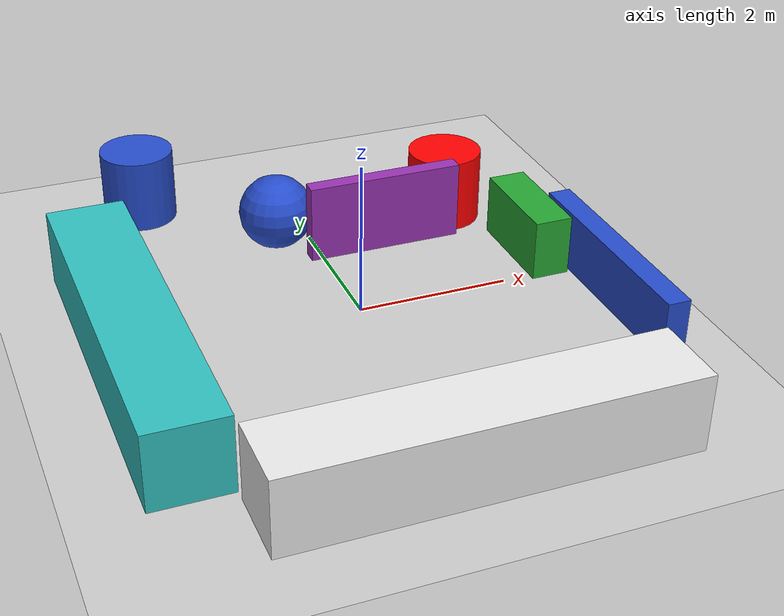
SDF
<sdf version="1.4">
 <world name="default">
  <light name="sun" type="directional">
   <pose>0 0 10 0 -0 0</pose>
   <diffuse>0.8 0.8 0.8 1</diffuse>
   <specular>0.2 0.2 0.2 1</specular>
   <attenuation>
    <range>1000</range>
    <constant>0.9</constant>
    <linear>0.01</linear>
    <quadratic>0.001</quadratic>
   </attenuation>
   <direction>-0.5 0.1 -0.9</direction>
  </light>
  <model name="ground_plane">
   <static>1</static>
   <link name="link">
    <collision name="collision">
     <geometry><plane><normal>0 0 1</normal><size>100 100</size></plane></geometry>
     <surface><friction><ode><mu>100</mu><mu2>50</mu2></ode></friction></surface>
    </collision>
    <visual name="visual">
     <cast_shadows>0</cast_shadows>
     <geometry><plane><normal>0 0 1</normal><size>100 100</size></plane></geometry>
     <material>
      <script><uri>file://media/materials/scripts/gazebo.material</uri><name>Gazebo/Grey</name></script>
     </material>
    </visual>
    <velocity_decay><linear>0</linear><angular>0</angular></velocity_decay>
   </link>
  </model>
  <physics type="ode">
   <max_step_size>0.001</max_step_size>
   <real_time_factor>1</real_time_factor>
   <real_time_update_rate>1000</real_time_update_rate>
   <gravity>0 0 -9.8</gravity>
  </physics>
  <scene><ambient>0.4 0.4 0.4 1</ambient><background>0.7 0.7 0.7 1</background><shadows>1</shadows></scene>
  <spherical_coordinates>
   <surface_model>EARTH_WGS84</surface_model>
   <latitude_deg>0</latitude_deg>
   <longitude_deg>0</longitude_deg>
   <elevation>0</elevation>
   <heading_deg>0</heading_deg>
  </spherical_coordinates>
  <model name="blue_box">
   <pose>3 -1 0.5 0 -0 0</pose>
   <link name="link">
    <inertial>
     <mass>1</mass>
     <inertia><ixx>1</ixx><ixy>0</ixy><ixz>0</ixz><iyy>1</iyy><iyz>0</iyz><izz>1</izz></inertia>
    </inertial>
    <collision name="collision"><geometry><box><size>0.3 3 0.8</size></box></geometry></collision>
    <visual name="visual">
     <geometry><box><size>0.3 3 0.8</size></box></geometry>
     <material>
      <script><uri>file://media/materials/scripts/gazebo.material</uri><name>Gazebo/Blue</name></script>
     </material>
    </visual>
    <velocity_decay><linear>0</linear><angular>0</angular></velocity_decay>
   </link>
   <static>1</static>
  </model>
  <model name="white_sphere">
   <pose>-0.462186 2 0.5 0 -0 0</pose>
   <link name="link">
    <inertial>
     <mass>1</mass>
     <inertia><ixx>1</ixx><ixy>0</ixy><ixz>0</ixz><iyy>1</iyy><iyz>0</iyz><izz>1</izz></inertia>
    </inertial>
    <collision name="collision"><geometry><sphere><radius>0.5</radius></sphere></geometry></collision>
    <visual name="visual">
     <geometry><sphere><radius>0.5</radius></sphere></geometry>
     <material>
      <script><uri>file://media/materials/scripts/gazebo.material</uri><name>Gazebo/blue</name></script>
     </material>
    </visual>
    <velocity_decay><linear>0</linear><angular>0</angular></velocity_decay>
   </link>
   <static>1</static>
  </model>
  <model name="red_cylinder">
   <pose>2 2 0.499998 0 -0 0</pose>
   <link name="link">
    <inertial>
     <mass>1</mass>
     <inertia><ixx>1</ixx><ixy>0</ixy><ixz>0</ixz><iyy>1</iyy><iyz>0</iyz><izz>1</izz></inertia>
    </inertial>
    <collision name="collision">
     <geometry><cylinder><radius>0.5</radius><length>1</length></cylinder></geometry>
    </collision>
    <visual name="visual">
     <geometry><cylinder><radius>0.5</radius><length>1</length></cylinder></geometry>
     <material>
      <script><uri>file://media/materials/scripts/gazebo.material</uri><name>Gazebo/Grey</name></script>
      <ambient>1 0 0 1</ambient>
      <diffuse>1 0 0 1</diffuse>
      <specular>0.1 0.1 0.1 1</specular>
      <emissive>0 0 0 0</emissive>
     </material>
    </visual>
    <velocity_decay><linear>0</linear><angular>0</angular></velocity_decay>
   </link>
   <static>1</static>
  </model>
  <model name="green_box">
   <pose>2.552 0.471529 0.5 0 -0 0</pose>
   <link name="link">
    <inertial>
     <mass>1</mass>
     <inertia><ixx>1</ixx><ixy>0</ixy><ixz>0</ixz><iyy>1</iyy><iyz>0</iyz><izz>1</izz></inertia>
    </inertial>
    <collision name="collision"><geometry><box><size>0.5 1.4 0.8</size></box></geometry></collision>
    <visual name="visual">
     <geometry><box><size>0.5 1.4 0.8</size></box></geometry>
     <material>
      <script><uri>file://media/materials/scripts/gazebo.material</uri><name>Gazebo/Green</name></script>
     </material>
    </visual>
    <velocity_decay><linear>0</linear><angular>0</angular></velocity_decay>
   </link>
   <static>1</static>
  </model>
  <model name="purple_box">
   <pose>0.554985 0.67 1 0 -0 0</pose>
   <link name="link">
    <inertial>
     <mass>1</mass>
     <inertia><ixx>1</ixx><ixy>0</ixy><ixz>0</ixz><iyy>1</iyy><iyz>0</iyz><izz>1</izz></inertia>
    </inertial>
    <collision name="collision"><geometry><box><size>2 0.2 1</size></box></geometry></collision>
    <visual name="visual">
     <geometry><box><size>2 0.2 1</size></box></geometry>
     <material>
      <script><uri>file://media/materials/scripts/gazebo.material</uri><name>Gazebo/Purple</name></script>
     </material>
    </visual>
    <velocity_decay><linear>0</linear><angular>0</angular></velocity_decay>
   </link>
   <static>1</static>
  </model>
  <model name="turquoise_box">
   <pose>-3 -0.410573 0.5 0 -0 0</pose>
   <link name="link">
    <inertial>
     <mass>1</mass>
     <inertia><ixx>1</ixx><ixy>0</ixy><ixz>0</ixz><iyy>1</iyy><iyz>0</iyz><izz>1</izz></inertia>
    </inertial>
    <collision name="collision"><geometry><box><size>1 5 1</size></box></geometry></collision>
    <visual name="visual">
     <geometry><box><size>1 5 1</size></box></geometry>
     <material>
      <script><uri>file://media/materials/scripts/gazebo.material</uri><name>Gazebo/Turquoise</name></script>
     </material>
    </visual>
    <velocity_decay><linear>0</linear><angular>0</angular></velocity_decay>
   </link>
   <static>1</static>
  </model>
  <model name="blue_cylinder">
   <pose>-2 3.49629 0.499992 0 -0 0</pose>
   <link name="link">
    <inertial>
     <mass>1</mass>
     <inertia><ixx>1</ixx><ixy>0</ixy><ixz>0</ixz><iyy>1</iyy><iyz>0</iyz><izz>1</izz></inertia>
    </inertial>
    <collision name="collision">
     <geometry><cylinder><radius>0.5</radius><length>1</length></cylinder></geometry>
    </collision>
    <visual name="visual">
     <geometry><cylinder><radius>0.5</radius><length>1</length></cylinder></geometry>
     <material>
      <script><uri>file://media/materials/scripts/gazebo.material</uri><name>Gazebo/Blue</name></script>
     </material>
    </visual>
    <velocity_decay><linear>0</linear><angular>0</angular></velocity_decay>
   </link>
   <static>1</static>
  </model>
  <model name="white_box">
   <pose>0 -3.54106 0.5 0 -0 0</pose>
   <link name="link">
    <inertial>
     <mass>1</mass>
     <inertia><ixx>1</ixx><ixy>0</ixy><ixz>0</ixz><iyy>1</iyy><iyz>0</iyz><izz>1</izz></inertia>
    </inertial>
    <collision name="collision"><geometry><box><size>5 1 1</size></box></geometry></collision>
    <visual name="visual">
     <geometry><box><size>5 1 1</size></box></geometry>
     <material>
      <script><uri>file://media/materials/scripts/gazebo.material</uri><name>Gazebo/White</name></script>
     </material>
    </visual>
    <velocity_decay><linear>0</linear><angular>0</angular></velocity_decay>
   </link>
   <static>1</static>
  </model>
 </world>
</sdf>
